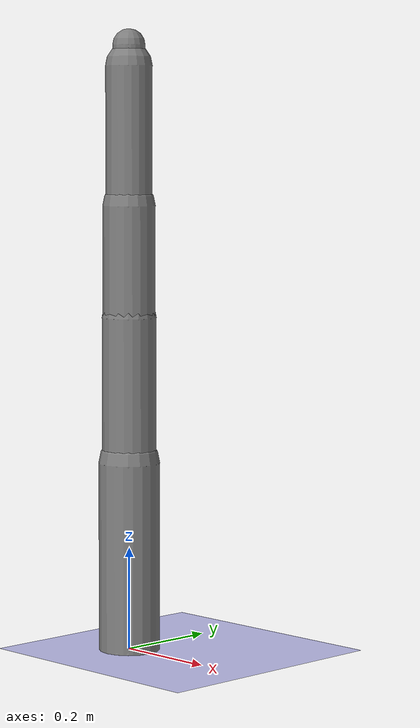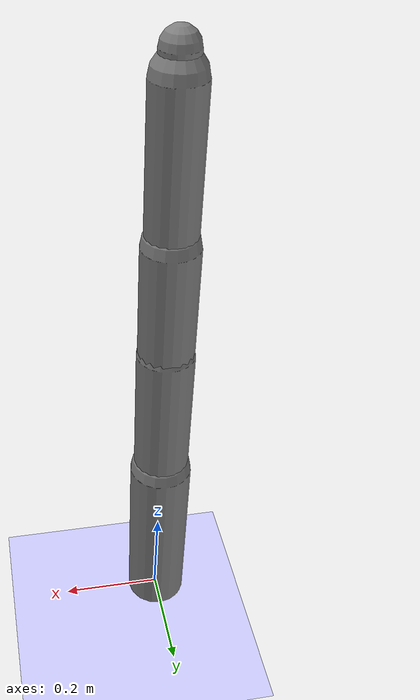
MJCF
<?xml version='1.0' encoding='UTF-8'?>
<mujoco model="robot_model">
  <worldbody>
    <light name="light" pos="0 -3 10" dir="0 0.5 -1" diffuse=".8 .8 .8" specular="0.1 0.1 0.1"/>
    <geom name="floor" type="plane" size="10.0 10.0 0.1" pos="0 0 0" rgba="0.8 0.8 1 1" contype="2" conaffinity="1"/>
    <body name="limb0" pos="0 0 0">
      <geom type="capsule" fromto="0 0 0 0 0 0.36707788899246524" size="0.05976371753945408" density="634.5009008985766" contype="1" conaffinity="2"/>
      <site type="sphere" size="0.01" name="limb0_site0" pos="0 0 0.278096955435155"/>
      <freejoint name="limb0_root"/>
      <body name="limb1" pos="0 0 0.278096955435155">
        <geom type="capsule" fromto="0 0 0 0 0 0.372274530228085" size="0.052960072305996767" density="1069.5549891432568" contype="1" conaffinity="2"/>
        <site type="sphere" size="0.01" name="limb1_site0" pos="0 0 0.3557022303991876"/>
        <site type="sphere" size="0.01" name="limb1_site1" pos="0 0 0.13266544409228273"/>
        <body name="limb2" pos="0 0 0.3557022303991876">
          <geom type="capsule" fromto="0 0 0 0 0 0.5" size="0.045329815490319995" density="1017.2531489540214" contype="1" conaffinity="2"/>
          <site type="sphere" size="0.01" name="limb2_site0" pos="0 0 0.34785567640622883"/>
          <body name="limb3" pos="0 0 0.34785567640622883">
            <geom type="capsule" fromto="0 0 0 0 0 0.19166066799868264" size="0.0314707546179414" density="956.2416848734547" contype="1" conaffinity="2"/>
            <joint name="joint_limb2_limb3_0" type="hinge" axis="0 1 0" range="-39.54825129765963 39.54825129765963" damping="5.0"/>
          </body>
          <joint name="joint_limb1_limb2_0" type="hinge" axis="0 1 0" range="-60.504894728636025 60.504894728636025" damping="5.0"/>
        </body>
        <body name="limb4" pos="0 0 0.13266544409228273">
          <geom type="capsule" fromto="0 0 0 0 0 0.4553959547646001" size="0.05112992904407712" density="905.1932138092933" contype="1" conaffinity="2"/>
          <joint name="joint_limb1_limb4_0" type="hinge" axis="1 0 0" range="-43.76356852503498 43.76356852503498" damping="5.0"/>
        </body>
        <joint name="joint_limb0_limb1_0" type="hinge" axis="0 1 0" range="-93.44884836950273 93.44884836950273" damping="5.0"/>
      </body>
    </body>
  </worldbody>
  <actuator>
    <position name="position_actuator_joint_limb0_limb1_0" joint="joint_limb0_limb1_0" gear="1.8094788729393487" inheritrange="1" forcerange="-20.869594355142794 20.869594355142794" forcelimited="true" kp="100.0"/>
    <position name="position_actuator_joint_limb1_limb2_0" joint="joint_limb1_limb2_0" gear="1.855224638398584" inheritrange="1" forcerange="-18.401183504925072 18.401183504925072" forcelimited="true" kp="100.0"/>
    <position name="position_actuator_joint_limb2_limb3_0" joint="joint_limb2_limb3_0" gear="1.9577561249166682" inheritrange="1" forcerange="-3.4754816031092273 3.4754816031092273" forcelimited="true" kp="100.0"/>
    <position name="position_actuator_joint_limb1_limb4_0" joint="joint_limb1_limb4_0" gear="0.9955208115659315" inheritrange="1" forcerange="-19.46191769120985 19.46191769120985" forcelimited="true" kp="100.0"/>
  </actuator>
</mujoco>
